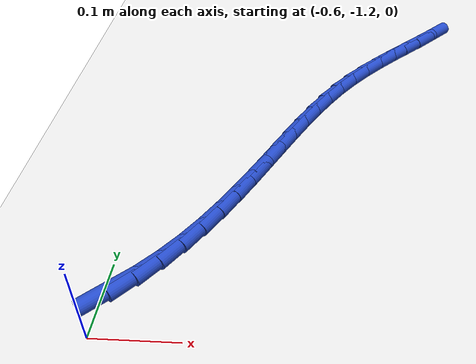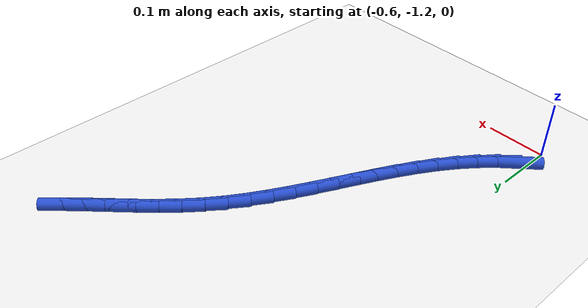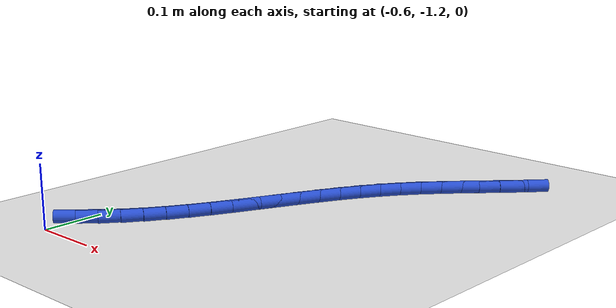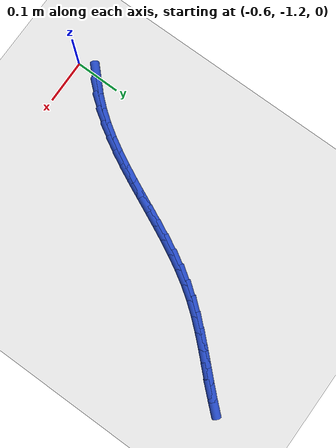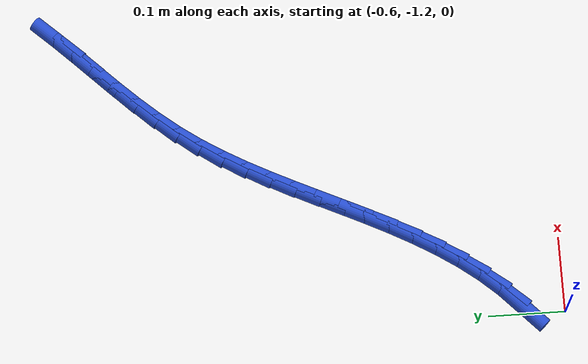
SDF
<sdf version="1.6">
 <world name="default">
  <model name="ground_plane">
   <static>1</static>
   <link name="link">
    <collision name="collision">
     <geometry><plane><normal>0 0 1</normal><size>100 100</size></plane></geometry>
     <surface><friction><ode><mu>100</mu><mu2>50</mu2></ode></friction></surface>
    </collision>
    <visual name="visual">
     <cast_shadows>0</cast_shadows>
     <geometry><plane><normal>0 0 1</normal><size>100 100</size></plane></geometry>
     <material>
      <script><uri>file://media/materials/scripts/gazebo.material</uri><name>Gazebo/WhiteGlow</name></script>
     </material>
    </visual>
   </link>
  </model>
  <model name="line">
   <link name="link_221">
    <pose>-0.5896861477814267 -1.143364114847361 0.01 0 1.57 0.76390447203576</pose>
    <collision name="collision">
     <geometry><cylinder><radius>0.01</radius><length>0.08</length></cylinder></geometry>
    </collision>
    <visual name="visual">
     <material>
      <script><name>Gazebo/Blue</name><uri>file://media/materials/scripts/gazebo.material</uri></script>
     </material>
     <geometry><cylinder><radius>0.01</radius><length>0.08</length></cylinder></geometry>
    </visual>
   </link>
   <link name="link_222">
    <pose>-0.5659867906084637 -1.1206622449388022 0.01 0 1.57 0.8500967464290892</pose>
    <collision name="collision">
     <geometry><cylinder><radius>0.01</radius><length>0.08</length></cylinder></geometry>
    </collision>
    <visual name="visual">
     <material>
      <script><name>Gazebo/Blue</name><uri>file://media/materials/scripts/gazebo.material</uri></script>
     </material>
     <geometry><cylinder><radius>0.01</radius><length>0.08</length></cylinder></geometry>
    </visual>
   </link>
   <link name="link_223">
    <pose>-0.54438944565307 -1.0960724831299313 0.01 0 1.57 0.9253546400367446</pose>
    <collision name="collision">
     <geometry><cylinder><radius>0.01</radius><length>0.08</length></cylinder></geometry>
    </collision>
    <visual name="visual">
     <material>
      <script><name>Gazebo/Blue</name><uri>file://media/materials/scripts/gazebo.material</uri></script>
     </material>
     <geometry><cylinder><radius>0.01</radius><length>0.08</length></cylinder></geometry>
    </visual>
   </link>
   <link name="link_224">
    <pose>-0.5246242572210044 -1.0698251678585877 0.01 0 1.57 0.9887171586645015</pose>
    <collision name="collision">
     <geometry><cylinder><radius>0.01</radius><length>0.08</length></cylinder></geometry>
    </collision>
    <visual name="visual">
     <material>
      <script><name>Gazebo/Blue</name><uri>file://media/materials/scripts/gazebo.material</uri></script>
     </material>
     <geometry><cylinder><radius>0.01</radius><length>0.08</length></cylinder></geometry>
    </visual>
   </link>
   <link name="link_225">
    <pose>-0.5064135233375169 -1.0421553421518628 0.01 0 1.57 1.0401258041549246</pose>
    <collision name="collision">
     <geometry><cylinder><radius>0.01</radius><length>0.08</length></cylinder></geometry>
    </collision>
    <visual name="visual">
     <material>
      <script><name>Gazebo/Blue</name><uri>file://media/materials/scripts/gazebo.material</uri></script>
     </material>
     <geometry><cylinder><radius>0.01</radius><length>0.08</length></cylinder></geometry>
    </visual>
   </link>
   <link name="link_226">
    <pose>-0.4894795420278575 -1.0132980490368462 0.01 0 1.57 1.0798884322111817</pose>
    <collision name="collision">
     <geometry><cylinder><radius>0.01</radius><length>0.08</length></cylinder></geometry>
    </collision>
    <visual name="visual">
     <material>
      <script><name>Gazebo/Blue</name><uri>file://media/materials/scripts/gazebo.material</uri></script>
     </material>
     <geometry><cylinder><radius>0.01</radius><length>0.08</length></cylinder></geometry>
    </visual>
   </link>
   <link name="link_227">
    <pose>-0.47354461131727643 -0.9834883315406288 0.01 0 1.57 1.1084590302341268</pose>
    <collision name="collision">
     <geometry><cylinder><radius>0.01</radius><length>0.08</length></cylinder></geometry>
    </collision>
    <visual name="visual">
     <material>
      <script><name>Gazebo/Blue</name><uri>file://media/materials/scripts/gazebo.material</uri></script>
     </material>
     <geometry><cylinder><radius>0.01</radius><length>0.08</length></cylinder></geometry>
    </visual>
   </link>
   <link name="link_228">
    <pose>-0.4583310292310236 -0.9529612326903011 0.01 0 1.57 1.126284148279917</pose>
    <collision name="collision">
     <geometry><cylinder><radius>0.01</radius><length>0.08</length></cylinder></geometry>
    </collision>
    <visual name="visual">
     <material>
      <script><name>Gazebo/Blue</name><uri>file://media/materials/scripts/gazebo.material</uri></script>
     </material>
     <geometry><cylinder><radius>0.01</radius><length>0.08</length></cylinder></geometry>
    </visual>
   </link>
   <link name="link_229">
    <pose>-0.44356109379434866 -0.9219517955129521 0.01 0 1.57 1.1337091008541242</pose>
    <collision name="collision">
     <geometry><cylinder><radius>0.01</radius><length>0.08</length></cylinder></geometry>
    </collision>
    <visual name="visual">
     <material>
      <script><name>Gazebo/Blue</name><uri>file://media/materials/scripts/gazebo.material</uri></script>
     </material>
     <geometry><cylinder><radius>0.01</radius><length>0.08</length></cylinder></geometry>
    </visual>
   </link>
   <link name="link_230">
    <pose>-0.4289571030325024 -0.8906950630356746 0.01 0 1.57 1.1309293498928974</pose>
    <collision name="collision">
     <geometry><cylinder><radius>0.01</radius><length>0.08</length></cylinder></geometry>
    </collision>
    <visual name="visual">
     <material>
      <script><name>Gazebo/Blue</name><uri>file://media/materials/scripts/gazebo.material</uri></script>
     </material>
     <geometry><cylinder><radius>0.01</radius><length>0.08</length></cylinder></geometry>
    </visual>
   </link>
   <link name="link_231">
    <pose>-0.4142413549707348 -0.8594260782855581 0.01 0 1.57 1.1179747890855891</pose>
    <collision name="collision">
     <geometry><cylinder><radius>0.01</radius><length>0.08</length></cylinder></geometry>
    </collision>
    <visual name="visual">
     <material>
      <script><name>Gazebo/Blue</name><uri>file://media/materials/scripts/gazebo.material</uri></script>
     </material>
     <geometry><cylinder><radius>0.01</radius><length>0.08</length></cylinder></geometry>
    </visual>
   </link>
   <link name="link_232">
    <pose>-0.3991361476342954 -0.8283798842896928 0.01 0 1.57 1.0947206601088022</pose>
    <collision name="collision">
     <geometry><cylinder><radius>0.01</radius><length>0.08</length></cylinder></geometry>
    </collision>
    <visual name="visual">
     <material>
      <script><name>Gazebo/Blue</name><uri>file://media/materials/scripts/gazebo.material</uri></script>
     </material>
     <geometry><cylinder><radius>0.01</radius><length>0.08</length></cylinder></geometry>
    </visual>
   </link>
   <link name="link_233">
    <pose>-0.3833637790484346 -0.7977915240751693 0.01 0 1.57 1.0609254441129978</pose>
    <collision name="collision">
     <geometry><cylinder><radius>0.01</radius><length>0.08</length></cylinder></geometry>
    </collision>
    <visual name="visual">
     <material>
      <script><name>Gazebo/Blue</name><uri>file://media/materials/scripts/gazebo.material</uri></script>
     </material>
     <geometry><cylinder><radius>0.01</radius><length>0.08</length></cylinder></geometry>
    </visual>
   </link>
   <link name="link_234">
    <pose>-0.36664654723840234 -0.767896040669078 0.01 0 1.57 1.0163017789020103</pose>
    <collision name="collision">
     <geometry><cylinder><radius>0.01</radius><length>0.08</length></cylinder></geometry>
    </collision>
    <visual name="visual">
     <material>
      <script><name>Gazebo/Blue</name><uri>file://media/materials/scripts/gazebo.material</uri></script>
     </material>
     <geometry><cylinder><radius>0.01</radius><length>0.08</length></cylinder></geometry>
    </visual>
   </link>
   <link name="link_235">
    <pose>-0.34870675022944864 -0.7389284770985094 0.01 0 1.57 0.9606858575290438</pose>
    <collision name="collision">
     <geometry><cylinder><radius>0.01</radius><length>0.08</length></cylinder></geometry>
    </collision>
    <visual name="visual">
     <material>
      <script><name>Gazebo/Blue</name><uri>file://media/materials/scripts/gazebo.material</uri></script>
     </material>
     <geometry><cylinder><radius>0.01</radius><length>0.08</length></cylinder></geometry>
    </visual>
   </link>
   <link name="link_236">
    <pose>-0.3292681913327734 -0.7111226938690566 0.01 0 1.57 0.9017086793757667</pose>
    <collision name="collision">
     <geometry><cylinder><radius>0.01</radius><length>0.08</length></cylinder></geometry>
    </collision>
    <visual name="visual">
     <material>
      <script><name>Gazebo/Blue</name><uri>file://media/materials/scripts/gazebo.material</uri></script>
     </material>
     <geometry><cylinder><radius>0.01</radius><length>0.08</length></cylinder></geometry>
    </visual>
   </link>
   <link name="link_237">
    <pose>-0.3082577087898591 -0.684553051446139 0.01 0 1.57 0.8548836823041553</pose>
    <collision name="collision">
     <geometry><cylinder><radius>0.01</radius><length>0.08</length></cylinder></geometry>
    </collision>
    <visual name="visual">
     <material>
      <script><name>Gazebo/Blue</name><uri>file://media/materials/scripts/gazebo.material</uri></script>
     </material>
     <geometry><cylinder><radius>0.01</radius><length>0.08</length></cylinder></geometry>
    </visual>
   </link>
   <link name="link_238">
    <pose>-0.28600823522249497 -0.6589748909526145 0.01 0 1.57 0.82211060895085</pose>
    <collision name="collision">
     <geometry><cylinder><radius>0.01</radius><length>0.08</length></cylinder></geometry>
    </collision>
    <visual name="visual">
     <material>
      <script><name>Gazebo/Blue</name><uri>file://media/materials/scripts/gazebo.material</uri></script>
     </material>
     <geometry><cylinder><radius>0.01</radius><length>0.08</length></cylinder></geometry>
    </visual>
   </link>
   <link name="link_239">
    <pose>-0.26290104669024195 -0.6341055759069163 0.01 0 1.57 0.8032920913007225</pose>
    <collision name="collision">
     <geometry><cylinder><radius>0.01</radius><length>0.08</length></cylinder></geometry>
    </collision>
    <visual name="visual">
     <material>
      <script><name>Gazebo/Blue</name><uri>file://media/materials/scripts/gazebo.material</uri></script>
     </material>
     <geometry><cylinder><radius>0.01</radius><length>0.08</length></cylinder></geometry>
    </visual>
   </link>
   <link name="link_240">
    <pose>-0.2393174192526609 -0.6096624698274774 0.01 0 1.57 0.7983354365021004</pose>
    <collision name="collision">
     <geometry><cylinder><radius>0.01</radius><length>0.08</length></cylinder></geometry>
    </collision>
    <visual name="visual">
     <material>
      <script><name>Gazebo/Blue</name><uri>file://media/materials/scripts/gazebo.material</uri></script>
     </material>
     <geometry><cylinder><radius>0.01</radius><length>0.08</length></cylinder></geometry>
    </visual>
   </link>
   <link name="link_241">
    <pose>-0.21563862896931296 -0.5853629362327313 0.01 0 1.57 0.8072615544823933</pose>
    <collision name="collision">
     <geometry><cylinder><radius>0.01</radius><length>0.08</length></cylinder></geometry>
    </collision>
    <visual name="visual">
     <material>
      <script><name>Gazebo/Blue</name><uri>file://media/materials/scripts/gazebo.material</uri></script>
     </material>
     <geometry><cylinder><radius>0.01</radius><length>0.08</length></cylinder></geometry>
    </visual>
   </link>
   <link name="link_242">
    <pose>-0.19224595189975904 -0.5609243386411108 0.01 0 1.57 0.8302348372224031</pose>
    <collision name="collision">
     <geometry><cylinder><radius>0.01</radius><length>0.08</length></cylinder></geometry>
    </collision>
    <visual name="visual">
     <material>
      <script><name>Gazebo/Blue</name><uri>file://media/materials/scripts/gazebo.material</uri></script>
     </material>
     <geometry><cylinder><radius>0.01</radius><length>0.08</length></cylinder></geometry>
    </visual>
   </link>
  </model>
 </world>
</sdf>
